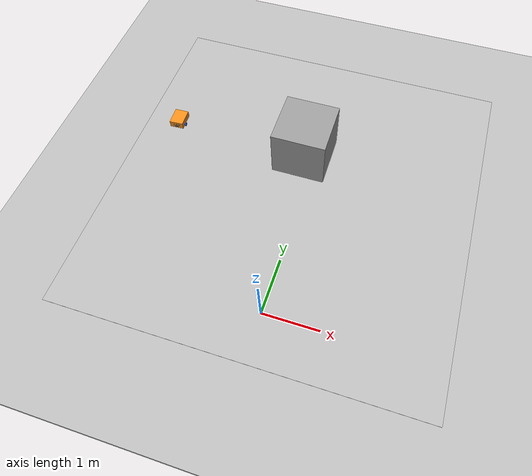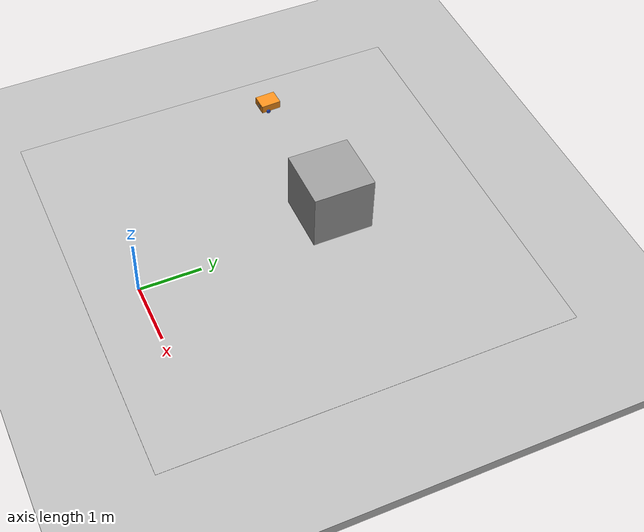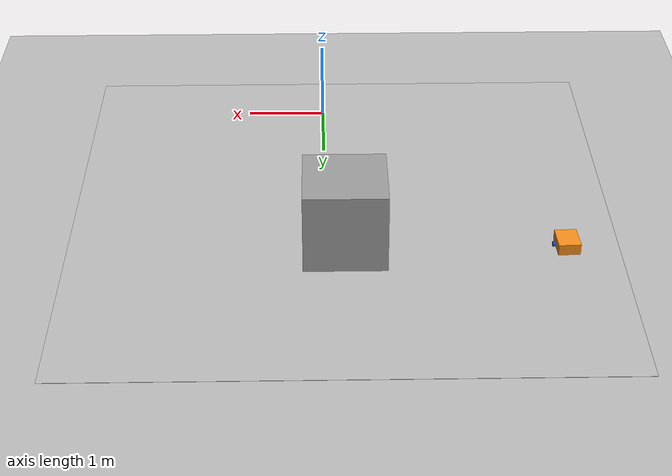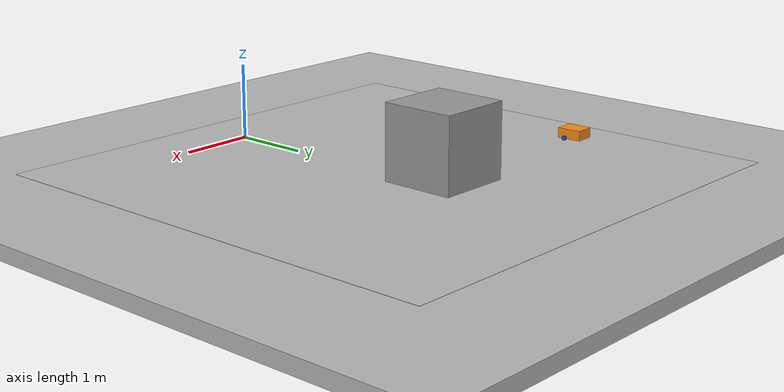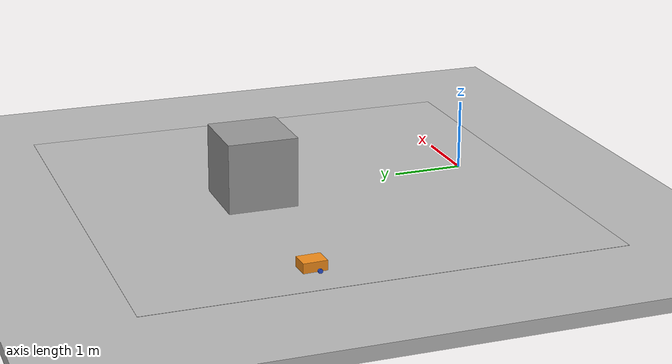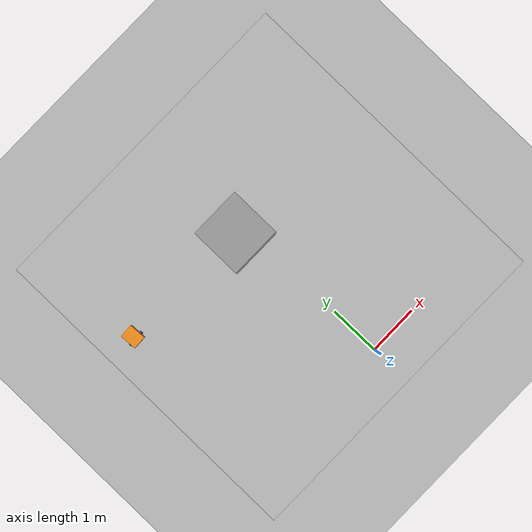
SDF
<sdf version="1.7">
 <world name="default">
  <light name="sun" type="directional">
   <pose>0 0 10 0 -0 0</pose>
   <diffuse>0.8 0.8 0.8 1</diffuse>
   <specular>0.2 0.2 0.2 1</specular>
   <attenuation>
    <range>1000</range>
    <constant>0.9</constant>
    <linear>0.01</linear>
    <quadratic>0.001</quadratic>
   </attenuation>
   <direction>-0.5 0.1 -0.9</direction>
   <spot><inner_angle>0</inner_angle><outer_angle>0</outer_angle><falloff>0</falloff></spot>
  </light>
  <model name="ground">
   <pose>1 2.3 -0.1 0 -0 0</pose>
   <static>1</static>
   <link name="ground">
    <collision name="ground_coll"><geometry><box><size>40 40 0.199</size></box></geometry></collision>
    <visual name="ground_vis">
     <geometry><box><size>40 40 0.199</size></box></geometry>
     <material><script><uri>file://course.material</uri><name>course</name></script></material>
    </visual>
   </link>
  </model>
  <gravity>0 0 -9.8</gravity>
  <magnetic_field>6e-06 2.3e-05 -4.2e-05</magnetic_field>
  <atmosphere type="adiabatic"/>
  <physics type="ode">
   <max_step_size>0.001</max_step_size>
   <real_time_factor>1</real_time_factor>
   <real_time_update_rate>1000</real_time_update_rate>
  </physics>
  <scene><ambient>0.4 0.4 0.4 1</ambient><background>0.7 0.7 0.7 1</background><shadows>1</shadows></scene>
  <audio><device>default</device></audio>
  <spherical_coordinates>
   <surface_model>EARTH_WGS84</surface_model>
   <latitude_deg>0</latitude_deg>
   <longitude_deg>0</longitude_deg>
   <elevation>0</elevation>
   <heading_deg>0</heading_deg>
  </spherical_coordinates>
  <model name="my_bot">
   <link name="base_link">
    <inertial>
     <pose>-0.060314 0 0.057392 0 -0 0</pose>
     <mass>0.51</mass>
     <inertia>
      <ixx>0.00378586</ixx>
      <ixy>0</ixy>
      <ixz>-7.43627e-05</ixz>
      <iyy>0.00561975</iyy>
      <iyz>0</iyz>
      <izz>0.00768637</izz>
     </inertia>
    </inertial>
    <collision name="base_link_fixed_joint_lump__chassis_collision">
     <pose>-0.0585 0 0.059 0 -0 0</pose>
     <geometry><box><size>0.335 0.265 0.138</size></box></geometry>
    </collision>
    <collision name="base_link_fixed_joint_lump__caster_wheel_collision_1">
     <pose>-0.151 0 -0.023 0 -0 0</pose>
     <geometry><sphere><radius>0.01</radius></sphere></geometry>
     <surface><friction><ode><mu>0.001</mu><mu2>0.001</mu2></ode></friction></surface>
    </collision>
    <visual name="base_link_fixed_joint_lump__chassis_visual">
     <pose>-0.0585 0 0.059 0 -0 0</pose>
     <geometry><box><size>0.335 0.265 0.138</size></box></geometry>
     <material>
      <script><name>Gazebo/Orange</name><uri>file://media/materials/scripts/gazebo.material</uri></script>
     </material>
    </visual>
    <visual name="base_link_fixed_joint_lump__camera_link_visual_1">
     <pose>0.109 0 0.07 0 -0 0</pose>
     <geometry><box><size>0.01 0.03 0.03</size></box></geometry>
     <material>
      <script><name>Gazebo/Black</name><uri>file://media/materials/scripts/gazebo.material</uri></script>
     </material>
    </visual>
    <visual name="base_link_fixed_joint_lump__caster_wheel_visual_2">
     <pose>-0.151 0 -0.023 0 -0 0</pose>
     <geometry><sphere><radius>0.01</radius></sphere></geometry>
     <material>
      <script><name>Gazebo/White</name><uri>file://media/materials/scripts/gazebo.material</uri></script>
     </material>
    </visual>
    <visual name="base_link_fixed_joint_lump__distance_sensor_link_visual_3">
     <pose>0.109 0.05 0.07 0 -0 0</pose>
     <geometry><box><size>0.01 0.03 0.03</size></box></geometry>
     <material>
      <script><name>Gazebo/Black</name><uri>file://media/materials/scripts/gazebo.material</uri></script>
     </material>
    </visual>
    <visual name="base_link_fixed_joint_lump__face_link_visual_4">
     <pose>0.109 0.05 0.069 3.14159 1.57079 3.14159</pose>
     <geometry><cylinder><length>0.002</length><radius>0.01</radius></cylinder></geometry>
     <material>
      <script><name>Gazebo/Black</name><uri>file://media/materials/scripts/gazebo.material</uri></script>
     </material>
    </visual>
    <visual name="base_link_fixed_joint_lump__face_link_visual_5">
     <pose>0.109 -0.05 0.069 3.14159 1.57079 3.14159</pose>
     <geometry><cylinder><length>0.002</length><radius>0.01</radius></cylinder></geometry>
     <material>
      <script><name>Gazebo/Black</name><uri>file://media/materials/scripts/gazebo.material</uri></script>
     </material>
    </visual>
    <visual name="base_link_fixed_joint_lump__face_link_visual_6">
     <pose>0.098 0 0.059 0 1.5 0</pose>
     <geometry><cylinder><length>0.02</length><radius>0.05</radius></cylinder></geometry>
     <material>
      <script><name>Gazebo/Black</name><uri>file://media/materials/scripts/gazebo.material</uri></script>
     </material>
    </visual>
    <sensor name="camera" type="camera">
     <visualize>1</visualize>
     <update_rate>20</update_rate>
     <camera>
      <horizontal_fov>1.089</horizontal_fov>
      <image><format>R8G8B8</format><width>640</width><height>480</height></image>
      <clip><near>0.05</near><far>8</far></clip>
     </camera>
     <plugin name="camera_controller" filename="libgazebo_ros_camera.so">
      <frame_name>camera_link_optical</frame_name>
     </plugin>
     <pose>0.109 0 0.07 0 -0 0</pose>
    </sensor>
    <sensor name="ultrasonic_1" type="ray">
     <always_on>1</always_on>
     <visualize>1</visualize>
     <update_rate>5</update_rate>
     <ray>
      <scan>
       <horizontal>
        <samples>5</samples>
        <resolution>1</resolution>
        <min_angle>-0.12</min_angle>
        <max_angle>0.12</max_angle>
       </horizontal>
       <vertical>
        <samples>5</samples>
        <resolution>1</resolution>
        <min_angle>-0.01</min_angle>
        <max_angle>0.01</max_angle>
       </vertical>
      </scan>
      <range><min>0.01</min><max>4</max><resolution>0.01</resolution></range>
     </ray>
     <plugin name="ultrasonic_sensor_1" filename="libgazebo_ros_ray_sensor.so">
      <gaussianNoise>0.005</gaussianNoise>
      <alwaysOn>1</alwaysOn>
      <output_type>sensor_msgs/Range</output_type>
      <updateRate>5</updateRate>
      <frame_name>distance_sensor_link</frame_name>
      <fov>0.5</fov>
      <radiation>ultrasound</radiation>
     </plugin>
     <pose>0.109 0.05 0.07 0 -0 0</pose>
    </sensor>
   </link>
   <joint name="left_wheel_joint" type="revolute">
    <pose relative_to="base_link">0 0.1485 0 -1.5708 0 0</pose>
    <parent>base_link</parent>
    <child>left_wheel</child>
    <axis>
     <xyz>0 0 1</xyz>
     <limit><lower>-1e+16</lower><upper>1e+16</upper></limit>
     <dynamics><spring_reference>0</spring_reference><spring_stiffness>0</spring_stiffness></dynamics>
    </axis>
   </joint>
   <link name="left_wheel">
    <pose relative_to="left_wheel_joint">0 0 0 0 -0 0</pose>
    <inertial>
     <mass>0.05</mass>
     <inertia>
      <ixx>1.64292e-05</ixx>
      <ixy>0</ixy>
      <ixz>0</ixz>
      <iyy>1.64292e-05</iyy>
      <iyz>0</iyz>
      <izz>2.7225e-05</izz>
     </inertia>
    </inertial>
    <collision name="left_wheel_collision">
     <geometry><sphere><radius>0.033</radius></sphere></geometry>
    </collision>
    <visual name="left_wheel_visual">
     <geometry><cylinder><length>0.026</length><radius>0.033</radius></cylinder></geometry>
     <material>
      <script><name>Gazebo/Blue</name><uri>file://media/materials/scripts/gazebo.material</uri></script>
     </material>
    </visual>
   </link>
   <joint name="right_wheel_joint" type="revolute">
    <pose relative_to="base_link">0 -0.1485 0 1.5708 -0 0</pose>
    <parent>base_link</parent>
    <child>right_wheel</child>
    <axis>
     <xyz>0 0 -1</xyz>
     <limit><lower>-1e+16</lower><upper>1e+16</upper></limit>
     <dynamics><spring_reference>0</spring_reference><spring_stiffness>0</spring_stiffness></dynamics>
    </axis>
   </joint>
   <link name="right_wheel">
    <pose relative_to="right_wheel_joint">0 0 0 0 -0 0</pose>
    <inertial>
     <mass>0.05</mass>
     <inertia>
      <ixx>1.64292e-05</ixx>
      <ixy>0</ixy>
      <ixz>0</ixz>
      <iyy>1.64292e-05</iyy>
      <iyz>0</iyz>
      <izz>2.7225e-05</izz>
     </inertia>
    </inertial>
    <collision name="right_wheel_collision">
     <geometry><sphere><radius>0.033</radius></sphere></geometry>
    </collision>
    <visual name="right_wheel_visual">
     <geometry><cylinder><length>0.026</length><radius>0.033</radius></cylinder></geometry>
     <material>
      <script><name>Gazebo/Blue</name><uri>file://media/materials/scripts/gazebo.material</uri></script>
     </material>
    </visual>
   </link>
   <static>0</static>
   <plugin name="gazebo_ros2_control" filename="libgazebo_ros2_control.so">
    <parameters>/home/paulo/Documents/Faculdade/PI2/Veiculo-Autonomo/ros2_simulation/my_ws/install/articubot_one/share/articubot_one/config/my_controllers.yaml</parameters>
    <parameters>/home/paulo/Documents/Faculdade/PI2/Veiculo-Autonomo/ros2_simulation/my_ws/install/articubot_one/share/articubot_one/config/gaz_ros2_ctl_use_sim.yaml</parameters>
   </plugin>
   <pose>-2.89019 3.28352 0.032497 2e-05 2.2e-05 -1.52851</pose>
  </model>
  <model name="track2">
   <static>1</static>
   <link name="link">
    <visual name="visual">
     <cast_shadows>0</cast_shadows>
     <geometry><plane><normal>0 0 0</normal><size>6.6 6.6</size></plane></geometry>
     <material>
      <script>
       <uri>model://track2/materials/scripts</uri>
       <uri>model://track2/materials/textures/</uri>
       <name>Track2/Image</name>
      </script>
     </material>
    </visual>
   </link>
   <pose>-0.223035 2.45436 0 0 -0 0</pose>
  </model>
  <model name="unit_box">
   <pose>-0.240805 3.27048 0.4995 -0 -0 -0</pose>
   <link name="link">
    <inertial>
     <mass>1</mass>
     <inertia>
      <ixx>0.166667</ixx>
      <ixy>0</ixy>
      <ixz>0</ixz>
      <iyy>0.166667</iyy>
      <iyz>0</iyz>
      <izz>0.166667</izz>
     </inertia>
    </inertial>
    <collision name="collision"><geometry><box><size>1 1 1</size></box></geometry></collision>
    <visual name="visual">
     <geometry><box><size>1 1 1</size></box></geometry>
     <material>
      <script><name>Gazebo/Grey</name><uri>file://media/materials/scripts/gazebo.material</uri></script>
     </material>
    </visual>
   </link>
  </model>
 </world>
</sdf>
